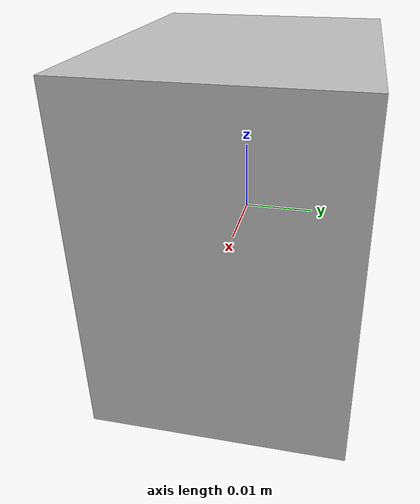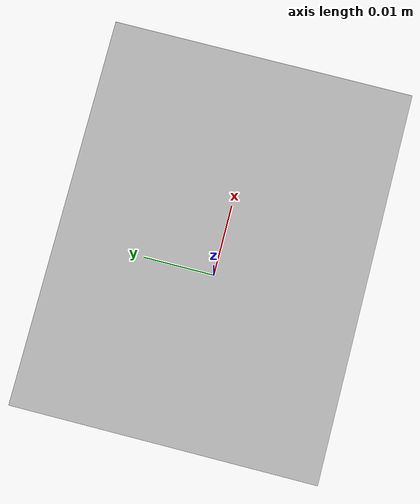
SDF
<?xml version='1.0'?>
<sdf version='1.6'>
  <model name="hadron">
      <pose>0 0 0 0.0 0.0 0</pose>
      <link name="hadron_link">
        <pose>0.0 0.0 0.0 0 0 0</pose>
        <collision name="collision">
          <geometry>
            <box>
              <size>0.0465 0.036 0.05</size>
            </box>
          </geometry>
        </collision>
        <visual name="visual">
          <geometry>
            <box>
              <size>0.0465 0.036 0.05</size>
            </box>
          </geometry>
        </visual>
        <sensor name="hadron" type="thermal">
          <camera>
            <horizontal_fov>1.047</horizontal_fov>
            <image>
              <width>640</width>
              <height>512</height>
              <format>L8</format>
            </image>
            <clip>
              <near>0.1</near>
              <far>100</far>
            </clip>
          </camera>
          <always_on>1</always_on>
          <update_rate>30</update_rate>
          <visualize>true</visualize>
          <topic>hadron/image</topic>
          <plugin
            filename="ignition-gazebo-thermal-sensor-system"
            name="ignition::gazebo::systems::ThermalSensor">
            <min_temp>253.15</min_temp>
            <max_temp>673.15</max_temp>
            <resolution>3.0</resolution>
          </plugin>

        </sensor>
      </link>
      <static>true</static>
    </model>
</sdf>
